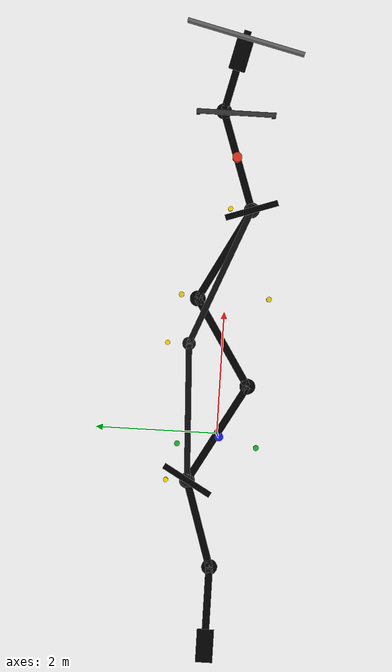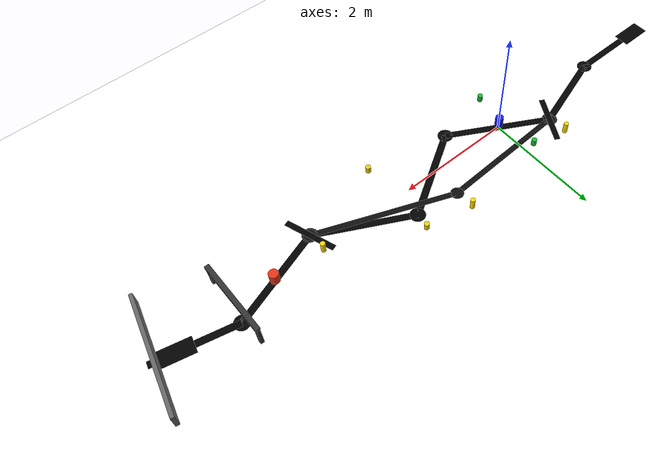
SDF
<?xml version="1.0"?>
<sdf version="1.9">
<world name="complex_track">

  <physics name="p" type="ignored">
    <max_step_size>0.004</max_step_size>
    <real_time_factor>1.0</real_time_factor>
  </physics>

  <plugin filename="gz-sim-physics-system"           name="gz::sim::systems::Physics"/>
  <plugin filename="gz-sim-user-commands-system"     name="gz::sim::systems::UserCommands"/>
  <plugin filename="gz-sim-scene-broadcaster-system" name="gz::sim::systems::SceneBroadcaster"/>
  <plugin filename="gz-sim-sensors-system"           name="gz::sim::systems::Sensors">
    <render_engine>ogre2</render_engine>
  </plugin>

  <light name="sun" type="directional">
    <pose>0 0 10 0 0 0</pose>
    <diffuse>1 1 1 1</diffuse>
    <specular>0.2 0.2 0.2 1</specular>
    <direction>-0.5 0.1 -0.9</direction>
    <cast_shadows>true</cast_shadows>
  </light>

  <!-- WHITE GROUND -->
  <model name="ground"><static>true</static>
    <link name="link">
      <collision name="col">
        <geometry><plane><normal>0 0 1</normal><size>40 24</size></plane></geometry>
        <surface><friction><ode><mu>3</mu><mu2>3</mu2></ode></friction></surface>
      </collision>
      <visual name="vis">
        <geometry><plane><normal>0 0 1</normal><size>40 24</size></plane></geometry>
        <material><ambient>1 1 1 1</ambient><diffuse>1 1 1 1</diffuse></material>
      </visual>
    </link>
  </model>

  <!-- BLACK LINE (visual only): connected zig-zag route for the camera follower. -->
  <model name="black_line"><static>true</static>
    <pose>0 0 0.001 0 0 0</pose>
    <link name="link">
      <visual name="seg_1">
        <pose>-2.85 0 0 0 0 0</pose>
        <geometry><box><size>1.30 0.12 0.001</size></box></geometry>
        <material><ambient>0 0 0 1</ambient><diffuse>0 0 0 1</diffuse></material>
      </visual>
      <visual name="seg_2">
        <pose>-1.50 0.225 0 0 0 0.311</pose>
        <geometry><box><size>1.47 0.12 0.001</size></box></geometry>
        <material><ambient>0 0 0 1</ambient><diffuse>0 0 0 1</diffuse></material>
      </visual>
      <visual name="seg_3">
        <pose>0.0 0.0 0 0 0 -0.512</pose>
        <geometry><box><size>1.84 0.12 0.001</size></box></geometry>
        <material><ambient>0 0 0 1</ambient><diffuse>0 0 0 1</diffuse></material>
      </visual>
      <visual name="seg_4">
        <pose>1.50 0.0 0 0 0 0.571</pose>
        <geometry><box><size>1.66 0.12 0.001</size></box></geometry>
        <material><ambient>0 0 0 1</ambient><diffuse>0 0 0 1</diffuse></material>
      </visual>
      <visual name="seg_5">
        <pose>2.95 0.05 0 0 0 -0.490</pose>
        <geometry><box><size>1.70 0.12 0.001</size></box></geometry>
        <material><ambient>0 0 0 1</ambient><diffuse>0 0 0 1</diffuse></material>
      </visual>
      <visual name="seg_6">
        <pose>4.50 -0.075 0 0 0 0.331</pose>
        <geometry><box><size>1.69 0.12 0.001</size></box></geometry>
        <material><ambient>0 0 0 1</ambient><diffuse>0 0 0 1</diffuse></material>
      </visual>
      <visual name="seg_7">
        <pose>5.975 0.041 0 0 0 -0.231</pose>
        <geometry><box><size>1.38 0.12 0.001</size></box></geometry>
        <material><ambient>0 0 0 1</ambient><diffuse>0 0 0 1</diffuse></material>
      </visual>
      <visual name="corner_1">
        <pose>-2.2 0 0 0 0 0</pose>
        <geometry><cylinder><radius>0.13</radius><length>0.001</length></cylinder></geometry>
        <material><ambient>0 0 0 1</ambient><diffuse>0 0 0 1</diffuse></material>
      </visual>
      <visual name="corner_2">
        <pose>-0.8 0.45 0 0 0 0</pose>
        <geometry><cylinder><radius>0.13</radius><length>0.001</length></cylinder></geometry>
        <material><ambient>0 0 0 1</ambient><diffuse>0 0 0 1</diffuse></material>
      </visual>
      <visual name="corner_3">
        <pose>0.8 -0.45 0 0 0 0</pose>
        <geometry><cylinder><radius>0.13</radius><length>0.001</length></cylinder></geometry>
        <material><ambient>0 0 0 1</ambient><diffuse>0 0 0 1</diffuse></material>
      </visual>
      <visual name="corner_4">
        <pose>2.2 0.45 0 0 0 0</pose>
        <geometry><cylinder><radius>0.13</radius><length>0.001</length></cylinder></geometry>
        <material><ambient>0 0 0 1</ambient><diffuse>0 0 0 1</diffuse></material>
      </visual>
      <visual name="corner_5">
        <pose>3.7 -0.35 0 0 0 0</pose>
        <geometry><cylinder><radius>0.13</radius><length>0.001</length></cylinder></geometry>
        <material><ambient>0 0 0 1</ambient><diffuse>0 0 0 1</diffuse></material>
      </visual>
      <visual name="corner_6">
        <pose>5.3 0.2 0 0 0 0</pose>
        <geometry><cylinder><radius>0.13</radius><length>0.001</length></cylinder></geometry>
        <material><ambient>0 0 0 1</ambient><diffuse>0 0 0 1</diffuse></material>
      </visual>
    </link>
  </model>

  <!-- Wider black patches keep the route easy for the camera at start/finish. -->
  <model name="start_pad"><static>true</static>
    <pose>-3.5 0 0.002 0 0 0</pose>
    <link name="link">
      <visual name="vis">
        <geometry><box><size>0.55 0.28 0.001</size></box></geometry>
        <material><ambient>0 0 0 1</ambient><diffuse>0 0 0 1</diffuse></material>
      </visual>
    </link>
  </model>

  <model name="checkpoint_cross_1"><static>true</static>
    <pose>-0.8 0.45 0.002 0 0 -0.512</pose>
    <link name="link">
      <visual name="vis">
        <geometry><box><size>0.10 0.90 0.001</size></box></geometry>
        <material><ambient>0 0 0 1</ambient><diffuse>0 0 0 1</diffuse></material>
      </visual>
    </link>
  </model>

  <model name="checkpoint_cross_2"><static>true</static>
    <pose>3.7 -0.35 0.002 0 0 0.331</pose>
    <link name="link">
      <visual name="vis">
        <geometry><box><size>0.10 0.90 0.001</size></box></geometry>
        <material><ambient>0 0 0 1</ambient><diffuse>0 0 0 1</diffuse></material>
      </visual>
    </link>
  </model>

  <model name="finish_pad"><static>true</static>
    <pose>6.25 -0.025 0.002 0 0 -0.231</pose>
    <link name="link">
      <visual name="vis">
        <geometry><box><size>0.55 0.28 0.001</size></box></geometry>
        <material><ambient>0 0 0 1</ambient><diffuse>0 0 0 1</diffuse></material>
      </visual>
    </link>
  </model>

  <!-- Obstacles sit on straight zig-zag segments, away from the corner pads. -->
  <model name="obstacle_1"><static>true</static>
    <pose>-0.05 -0.03 0.10 0 0 0</pose>
    <link name="link">
      <collision name="col">
        <geometry><cylinder><radius>0.07</radius><length>0.20</length></cylinder></geometry>
      </collision>
      <visual name="vis">
        <geometry><cylinder><radius>0.07</radius><length>0.20</length></cylinder></geometry>
        <material><ambient>0.1 0.1 0.9 1</ambient><diffuse>0.1 0.1 0.9 1</diffuse></material>
      </visual>
    </link>
  </model>

  <model name="obstacle_2"><static>true</static>
    <pose>4.55 -0.06 0.10 0 0 0</pose>
    <link name="link">
      <collision name="col">
        <geometry><cylinder><radius>0.08</radius><length>0.20</length></cylinder></geometry>
      </collision>
      <visual name="vis">
        <geometry><cylinder><radius>0.08</radius><length>0.20</length></cylinder></geometry>
        <material><ambient>0.9 0.2 0.1 1</ambient><diffuse>0.9 0.2 0.1 1</diffuse></material>
      </visual>
    </link>
  </model>

  <!-- Side markers and gates make the course easier to see but stay outside the robot path. -->
  <model name="left_marker_1"><static>true</static>
    <pose>-0.2 0.65 0.06 0 0 0</pose>
    <link name="link">
      <visual name="vis">
        <geometry><cylinder><radius>0.045</radius><length>0.12</length></cylinder></geometry>
        <material><ambient>0.1 0.7 0.2 1</ambient><diffuse>0.1 0.7 0.2 1</diffuse></material>
      </visual>
    </link>
  </model>

  <model name="right_marker_1"><static>true</static>
    <pose>-0.2 -0.65 0.06 0 0 0</pose>
    <link name="link">
      <visual name="vis">
        <geometry><cylinder><radius>0.045</radius><length>0.12</length></cylinder></geometry>
        <material><ambient>0.1 0.7 0.2 1</ambient><diffuse>0.1 0.7 0.2 1</diffuse></material>
      </visual>
    </link>
  </model>

  <model name="left_marker_2"><static>true</static>
    <pose>2.25 0.72 0.06 0 0 0</pose>
    <link name="link">
      <visual name="vis">
        <geometry><cylinder><radius>0.045</radius><length>0.12</length></cylinder></geometry>
        <material><ambient>0.9 0.8 0.1 1</ambient><diffuse>0.9 0.8 0.1 1</diffuse></material>
      </visual>
    </link>
  </model>

  <model name="right_marker_2"><static>true</static>
    <pose>2.25 -0.72 0.06 0 0 0</pose>
    <link name="link">
      <visual name="vis">
        <geometry><cylinder><radius>0.045</radius><length>0.12</length></cylinder></geometry>
        <material><ambient>0.9 0.8 0.1 1</ambient><diffuse>0.9 0.8 0.1 1</diffuse></material>
      </visual>
    </link>
  </model>

  <model name="checkpoint_gate"><static>true</static>
    <pose>5.25 0 0 0 0 0</pose>
    <link name="left_post">
      <pose>0 0.62 0.20 0 0 0</pose>
      <visual name="vis">
        <geometry><box><size>0.06 0.06 0.40</size></box></geometry>
        <material><ambient>0.2 0.2 0.2 1</ambient><diffuse>0.2 0.2 0.2 1</diffuse></material>
      </visual>
    </link>
    <link name="right_post">
      <pose>0 -0.62 0.20 0 0 0</pose>
      <visual name="vis">
        <geometry><box><size>0.06 0.06 0.40</size></box></geometry>
        <material><ambient>0.2 0.2 0.2 1</ambient><diffuse>0.2 0.2 0.2 1</diffuse></material>
      </visual>
    </link>
    <link name="top_bar">
      <pose>0 0 0.43 0 0 0</pose>
      <visual name="vis">
        <geometry><box><size>0.08 1.30 0.06</size></box></geometry>
        <material><ambient>0.2 0.2 0.2 1</ambient><diffuse>0.2 0.2 0.2 1</diffuse></material>
      </visual>
    </link>
  </model>

  <!-- SHORTCUT LINE (added by Dijkstra path planner upgrade)         -->
  <!-- Two segments from junc_a(-0.8,0.45) via sc_mid(1.45,0.55)     -->
  <!-- to junc_b(3.7,-0.35).  Drawn in dark-gray so the camera can   -->
  <!-- detect it just like the main black line.                       -->
  <model name="shortcut_line"><static>true</static>
    <pose>0 0 0.0015 0 0 0</pose>
    <link name="link">
      <!-- Segment A: junc_a -> sc_mid -->
      <visual name="sc_seg_a">
        <pose>0.325 0.500 0 0 0 0.0444</pose>
        <geometry><box><size>2.252 0.10 0.001</size></box></geometry>
        <material><ambient>0.05 0.05 0.05 1</ambient><diffuse>0.05 0.05 0.05 1</diffuse></material>
      </visual>
      <!-- Segment B: sc_mid -> junc_b -->
      <visual name="sc_seg_b">
        <pose>2.575 0.100 0 0 0 -0.3805</pose>
        <geometry><box><size>2.423 0.10 0.001</size></box></geometry>
        <material><ambient>0.05 0.05 0.05 1</ambient><diffuse>0.05 0.05 0.05 1</diffuse></material>
      </visual>
      <!-- Junction blending discs so the camera sees continuity -->
      <visual name="sc_junc_a">
        <pose>-0.80 0.45 0 0 0 0</pose>
        <geometry><cylinder><radius>0.11</radius><length>0.001</length></cylinder></geometry>
        <material><ambient>0.05 0.05 0.05 1</ambient><diffuse>0.05 0.05 0.05 1</diffuse></material>
      </visual>
      <visual name="sc_mid_disc">
        <pose>1.45 0.55 0 0 0 0</pose>
        <geometry><cylinder><radius>0.11</radius><length>0.001</length></cylinder></geometry>
        <material><ambient>0.05 0.05 0.05 1</ambient><diffuse>0.05 0.05 0.05 1</diffuse></material>
      </visual>
      <visual name="sc_junc_b">
        <pose>3.70 -0.35 0 0 0 0</pose>
        <geometry><cylinder><radius>0.11</radius><length>0.001</length></cylinder></geometry>
        <material><ambient>0.05 0.05 0.05 1</ambient><diffuse>0.05 0.05 0.05 1</diffuse></material>
      </visual>
    </link>
  </model>

  <!-- SHORTCUT MARKER POSTS — bright yellow poles so human observers  -->
  <!-- can instantly see which route the robot chose.                  -->
  <model name="sc_marker_start"><static>true</static>
    <pose>-0.80 0.80 0.10 0 0 0</pose>
    <link name="link">
      <visual name="vis">
        <geometry><cylinder><radius>0.04</radius><length>0.20</length></cylinder></geometry>
        <material><ambient>1.0 0.85 0.0 1</ambient><diffuse>1.0 0.85 0.0 1</diffuse></material>
      </visual>
    </link>
  </model>
  <model name="sc_marker_mid"><static>true</static>
    <pose>1.45 0.90 0.10 0 0 0</pose>
    <link name="link">
      <visual name="vis">
        <geometry><cylinder><radius>0.04</radius><length>0.20</length></cylinder></geometry>
        <material><ambient>1.0 0.85 0.0 1</ambient><diffuse>1.0 0.85 0.0 1</diffuse></material>
      </visual>
    </link>
  </model>
  <model name="sc_marker_end"><static>true</static>
    <pose>3.70 0.00 0.10 0 0 0</pose>
    <link name="link">
      <visual name="vis">
        <geometry><cylinder><radius>0.04</radius><length>0.20</length></cylinder></geometry>
        <material><ambient>1.0 0.85 0.0 1</ambient><diffuse>1.0 0.85 0.0 1</diffuse></material>
      </visual>
    </link>
  </model>

  <!-- END WALL -->
  <model name="end_wall"><static>true</static>
    <pose>6.52 -0.09 0.15 0 0 -0.231</pose>
    <link name="link">
      <collision name="col">
        <geometry><box><size>0.06 2.0 0.30</size></box></geometry>
      </collision>
      <visual name="vis">
        <geometry><box><size>0.06 2.0 0.30</size></box></geometry>
        <material><ambient>0.4 0.4 0.4 1</ambient><diffuse>0.4 0.4 0.4 1</diffuse></material>
      </visual>
    </link>
  </model>

</world>
</sdf>
